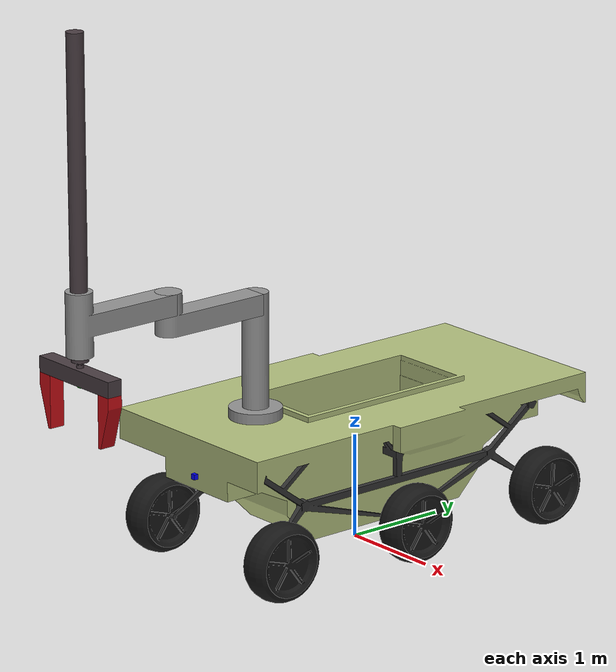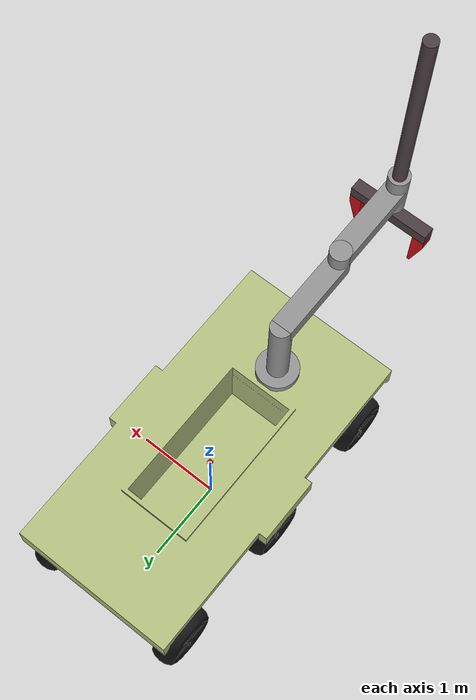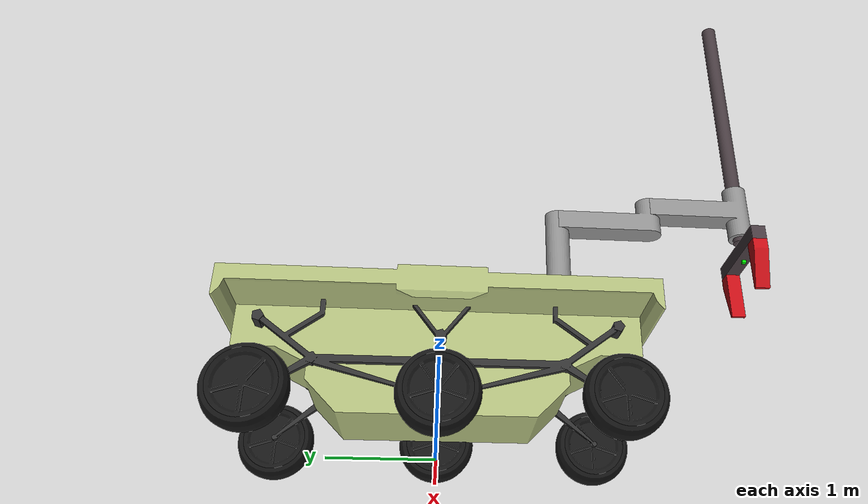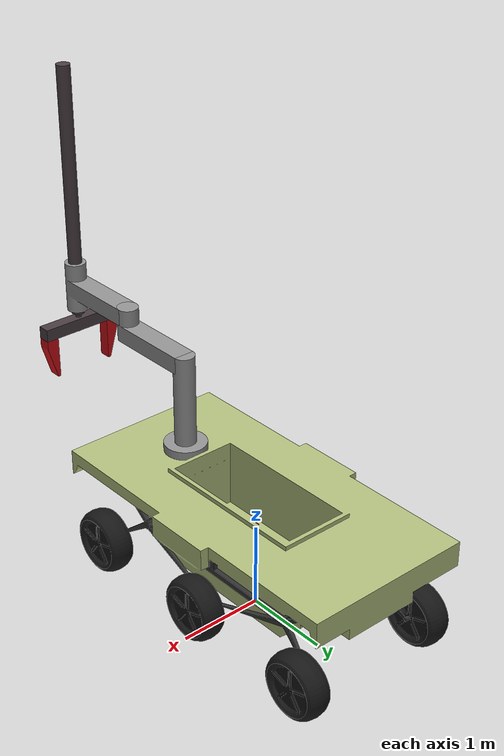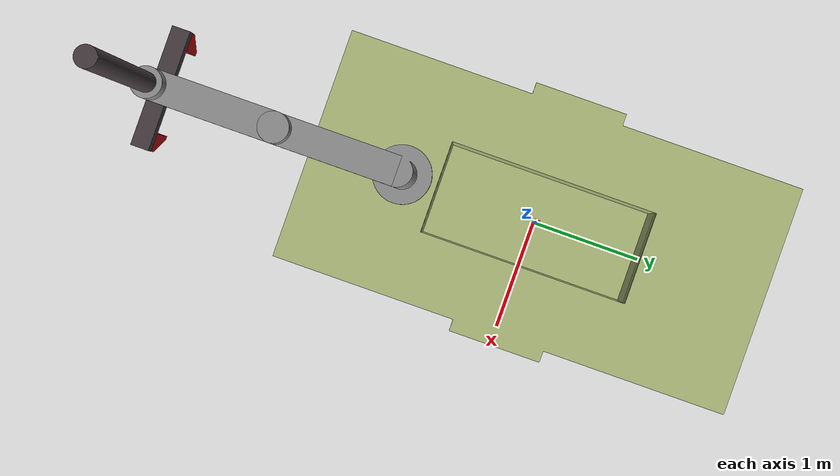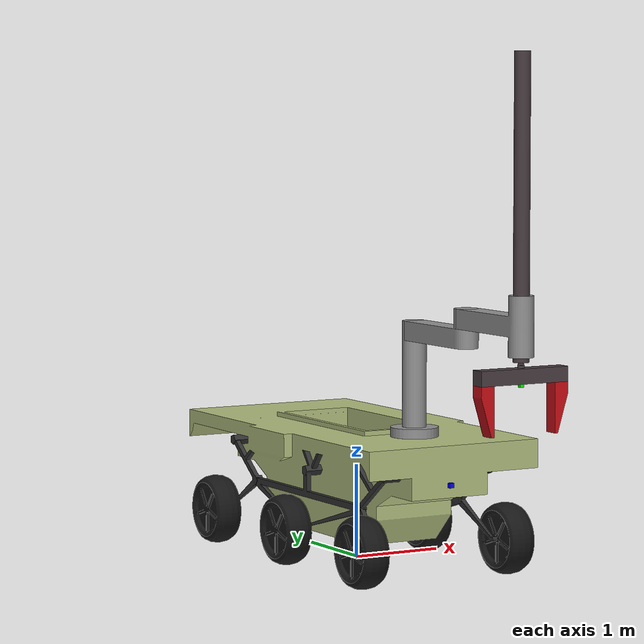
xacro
<?xml version="1.0" encoding="UTF-8"?>
<robot name="rover_jorge_martin" xmlns:xacro="http://wiki.ros.org/xacro">

  <xacro:include filename="$(find rover_jorge_martin_description)/urdf/base/robot_base.urdf.xacro"/>
  <xacro:include filename="$(find rover_jorge_martin_description)/urdf/scara/robot_scara.urdf.xacro"/>
  <xacro:include filename="$(find rover_jorge_martin_description)/urdf/ruedas/robot_ruedas.urdf.xacro"/>

  <link name="base_footprint"/>
  <link name="base_link"/>

  <joint name="base_footprint_to_base_link" type="fixed">
    <parent link="base_footprint"/>
    <child link="base_link"/>
    <origin rpy="0 0 0" xyz="0 0 1.025"/>
  </joint>

  <joint name="base_link_to_root" type="fixed">
    <parent link="base_link"/>
    <child link="rover_Root"/>
    <origin rpy="0 0 0" xyz="0 0 0"/>
  </joint>

  <xacro:rover_base prefix="rover_"
                    chasis_mass="100.0"
                    imu_topic="/rover/imu/data"
                    camera_topic="/rover/front_camera/image_raw"
                    camera_width="640"
                    camera_height="480"
                    camera_fov="1.39626"/>

  <xacro:robot_scara prefix="rover_"
                     ee_camera_topic="/rover/ee_camera/image_raw"
                     ee_camera_width="640"
                     ee_camera_height="480"
                     ee_camera_fov="1.39626"/>

  <xacro:robot_ruedas prefix="rover_"/>

  <xacro:include filename="$(find rover_jorge_martin_description)/urdf/ros2_control.urdf.xacro"/>
  <xacro:ros2_control config_controllers="$(find rover_jorge_martin_description)/config/rover_controllers.yaml"/>

</robot>

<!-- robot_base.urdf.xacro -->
<robot xmlns:xacro="http://wiki.ros.org/xacro">

  <xacro:macro name="rover_base"
               params="prefix
                       chasis_mass:=75.0
                       chasis_ixx:=0.002
                       chasis_iyy:=0.002
                       chasis_izz:=0.002
                       imu_topic:=/imu
                       camera_topic:=/camera/image
                       camera_width:=640
                       camera_height:=480
                       camera_fov:=1.39626">

    <link name="${prefix}Root"/>

    <link name="${prefix}Chasis_visual">
      <collision name="${prefix}Chasis_collision_1">
        <origin rpy="0 0 0" xyz="0 -1.44233 -0.12967"/>
        <geometry>
          <box size="2.20000 1.08467 1.20000"/>
        </geometry>
      </collision>
      <collision name="${prefix}Chasis_collision_2">
        <origin rpy="0 0 0" xyz="0 1.45830 -0.12967"/>
        <geometry>
          <box size="2.20000 1.11661 1.20000"/>
        </geometry>
      </collision>
      <collision name="${prefix}Chasis_collision_3">
        <origin rpy="0 0 0" xyz="0.80174 0 -0.12967"/>
        <geometry>
          <box size="0.80348 4.00000 1.20000"/>
        </geometry>
      </collision>
      <collision name="${prefix}Chasis_collision_4">
        <origin rpy="0 0 0" xyz="-0.73049 0 -0.12967"/>
        <geometry>
          <box size="0.71767 4.00000 1.20000"/>
        </geometry>
      </collision>
      <collision name="${prefix}Chasis_collision_5">
        <origin rpy="0 0 0" xyz="0 0 -0.52825"/>
        <geometry>
          <box size="2.20000 4.00000 0.42160"/>
        </geometry>
      </collision>

      <inertial>
        <inertia ixx="${chasis_ixx}" ixy="0" ixz="0" iyy="${chasis_iyy}" iyz="0" izz="${chasis_izz}"/>
        <origin rpy="0 0 0" xyz="0 0 0"/>
        <mass value="${chasis_mass}"/>
      </inertial>

      <visual name="${prefix}Chasis_visual_mesh">
        <material name="${prefix}Chasis_material"/>
        <origin rpy="0 0 0" xyz="0 0 0"/>
        <geometry>
          <mesh filename="file:///home/longas/.gz/sim/models/rover_jorge_martin_description/meshes/dae/Cube.017.dae" scale="1 1 1"/>
        </geometry>
      </visual>
    </link>

    <link name="${prefix}Suspension_I_visual">
      <visual name="${prefix}Suspension_I_visual_mesh">
        <material name="${prefix}Suspension_material"/>
        <origin rpy="0 0 0" xyz="0 0 0"/>
        <geometry>
          <mesh filename="file:///home/longas/.gz/sim/models/rover_jorge_martin_description/meshes/dae/Cylinder.007.dae" scale="1 1 1"/>
        </geometry>
      </visual>
    </link>

    <link name="${prefix}Suspension_D_visual">
      <visual name="${prefix}Suspension_D_visual_mesh">
        <material name="${prefix}Suspension_material"/>
        <origin rpy="0 0 0" xyz="0 0 0"/>
        <geometry>
          <mesh filename="file:///home/longas/.gz/sim/models/rover_jorge_martin_description/meshes/dae/Cylinder.013.dae" scale="1 1 1"/>
        </geometry>
      </visual>
    </link>

    <link name="${prefix}Chasis_link"/>
    <link name="${prefix}Suspension_I_link"/>
    <link name="${prefix}Suspension_D_link"/>

    <link name="${prefix}imu_link">
      <visual name="${prefix}imu_visual">
        <material name="${prefix}imu_material"/>
        <origin rpy="0 0 0" xyz="0 0 0"/>
        <geometry>
          <box size="0.05 0.05 0.05"/>
        </geometry>
      </visual>
    </link>

    <link name="${prefix}front_camera_frame">
      <visual name="${prefix}front_camera_visual">
        <material name="${prefix}camera_material"/>
        <origin rpy="0 0 0" xyz="0 0 0"/>
        <geometry>
          <box size="0.08 0.05 0.05"/>
        </geometry>
      </visual>
    </link>

    <joint name="${prefix}Chasis_visual_joint" type="fixed">
      <parent link="${prefix}Root"/>
      <child link="${prefix}Chasis_visual"/>
      <origin rpy="0 0 0" xyz="0 0 0"/>
    </joint>

    <joint name="${prefix}Suspension_I_visual_joint" type="fixed">
      <parent link="${prefix}Root"/>
      <child link="${prefix}Suspension_I_visual"/>
      <origin rpy="0 0 0" xyz="0.58736 -0.18962 -0.20712"/>
    </joint>

    <joint name="${prefix}Suspension_D_visual_joint" type="fixed">
      <parent link="${prefix}Root"/>
      <child link="${prefix}Suspension_D_visual"/>
      <origin rpy="0 0 0" xyz="-0.58736 0.18962 -0.20712"/>
    </joint>

    <joint name="${prefix}Chasis_joint" type="fixed">
      <parent link="${prefix}Root"/>
      <child link="${prefix}Chasis_link"/>
      <origin rpy="0 0 -1.5708" xyz="0 0 0"/>
    </joint>

    <joint name="${prefix}Suspension_I_joint" type="fixed">
      <parent link="${prefix}Root"/>
      <child link="${prefix}Suspension_I_link"/>
      <origin rpy="0 0 -1.5708" xyz="0.58736 -0.18962 -0.20712"/>
    </joint>

    <joint name="${prefix}Suspension_D_joint" type="fixed">
      <parent link="${prefix}Root"/>
      <child link="${prefix}Suspension_D_link"/>
      <origin rpy="0 0 -1.5708" xyz="-0.58736 0.18962 -0.20712"/>
    </joint>

    <joint name="${prefix}imu_joint" type="fixed">
      <parent link="${prefix}Chasis_link"/>
      <child link="${prefix}imu_link"/>
      <origin rpy="0 0 0" xyz="0 0 0"/>
    </joint>

    <joint name="${prefix}front_camera_joint" type="fixed">
      <parent link="${prefix}Chasis_link"/>
      <child link="${prefix}front_camera_frame"/>
      <origin rpy="0 0 0" xyz="1.9 0 0"/>
    </joint>

    <gazebo reference="${prefix}imu_link">
      <sensor name="${prefix}imu_sensor" type="imu">
        <always_on>1</always_on>
        <update_rate>30</update_rate>
        <topic>${imu_topic}</topic>
        <visualize>true</visualize>
      </sensor>
    </gazebo>

    <gazebo reference="${prefix}front_camera_frame">
      <sensor name="${prefix}front_camera" type="camera">
        <visualize>true</visualize>
        <update_rate>30</update_rate>
        <topic>${camera_topic}</topic>
        <camera>
          <horizontal_fov>${camera_fov}</horizontal_fov>
          <image>
            <width>${camera_width}</width>
            <height>${camera_height}</height>
            <format>R8G8B8</format>
          </image>
          <clip>
            <near>0.10</near>
            <far>15.0</far>
          </clip>
          <noise>
            <type>gaussian</type>
            <mean>0.0</mean>
            <stddev>0.007</stddev>
          </noise>
          <optical_frame_id>${prefix}front_camera_frame</optical_frame_id>
        </camera>
      </sensor>
    </gazebo>

    <material name="${prefix}Chasis_material">
      <color rgba="0.69804 0.74902 0.49412 1.0"/>
    </material>

    <material name="${prefix}Suspension_material">
      <color rgba="0.19608 0.19608 0.19608 1.0"/>
    </material>

    <material name="${prefix}imu_material">
      <color rgba="1.0 0.0 0.0 1.0"/>
    </material>

    <material name="${prefix}camera_material">
      <color rgba="0.0 0.0 1.0 1.0"/>
    </material>

  </xacro:macro>

</robot>

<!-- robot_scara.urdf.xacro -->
<robot xmlns:xacro="http://wiki.ros.org/xacro">

  <xacro:include filename="$(find rover_jorge_martin_description)/urdf/scara/brazo_scara.urdf.xacro"/>
  <xacro:include filename="$(find rover_jorge_martin_description)/urdf/scara/mano_scara.urdf.xacro"/>

  <xacro:macro name="robot_scara"
               params="prefix
                       brazo1_mass:=5.0
                       brazo2_mass:=5.0
                       brazo3_mass:=6.0
                       brazo4_mass:=6.0
                       muneca_mass:=2.0
                       dedo_mass:=0.5
                       ee_camera_topic:=/ee_camera/image
                       ee_camera_width:=640
                       ee_camera_height:=480
                       ee_camera_fov:=1.39626">

    <xacro:brazo_scara prefix="${prefix}"
                       brazo1_mass="${brazo1_mass}"
                       brazo2_mass="${brazo2_mass}"
                       brazo3_mass="${brazo3_mass}"
                       brazo4_mass="${brazo4_mass}"/>

    <xacro:mano_scara prefix="${prefix}"
                      muneca_mass="${muneca_mass}"
                      dedo_mass="${dedo_mass}"
                      ee_camera_topic="${ee_camera_topic}"
                      ee_camera_width="${ee_camera_width}"
                      ee_camera_height="${ee_camera_height}"
                      ee_camera_fov="${ee_camera_fov}"/>

  </xacro:macro>

</robot>

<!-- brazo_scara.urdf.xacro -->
<robot xmlns:xacro="http://wiki.ros.org/xacro">

  <xacro:macro name="brazo_scara"
               params="prefix
                       brazo1_mass:=5.0
                       brazo2_mass:=5.0
                       brazo3_mass:=6.0
                       brazo4_mass:=6.0">

    <link name="${prefix}Brazo1_visual">
      <collision name="${prefix}Brazo1_collision">
        <origin rpy="0 0 0" xyz="0 0 0.60000"/>
        <geometry><cylinder radius="0.25000" length="1.20000"/></geometry>
      </collision>
      <inertial>
        <inertia ixx="0.66448" ixy="0" ixz="0" iyy="0.66448" iyz="0" izz="0.07703"/>
        <origin rpy="0 0 0" xyz="0 0 0.49000"/>
        <mass value="${brazo1_mass}"/>
      </inertial>
      <visual name="${prefix}Brazo1_visual_mesh">
        <material name="${prefix}Brazo1_material"/>
        <origin rpy="0 0 0" xyz="0 0 0.65000"/>
        <geometry>
          <mesh filename="file:///home/longas/.gz/sim/models/rover_jorge_martin_description/meshes/dae/Circle.001.dae" scale="0.125 0.125 0.12602"/>
        </geometry>
      </visual>
    </link>

    <link name="${prefix}Brazo2_visual">
      <collision name="${prefix}Brazo2_collision">
        <origin rpy="0 0 0" xyz="0 -0.56010 0.07193"/>
        <geometry><box size="0.25000 1.12500 0.40000"/></geometry>
      </collision>
      <inertial>
        <inertia ixx="1.07924" ixy="0" ixz="0" iyy="0.08347" iyz="0.14296" izz="1.04413"/>
        <origin rpy="0 0 0" xyz="0 -0.64033 0"/>
        <mass value="${brazo2_mass}"/>
      </inertial>
      <visual name="${prefix}Brazo2_visual_mesh">
        <material name="${prefix}Brazo2_material"/>
        <origin rpy="0 0 0" xyz="0 -0.64033 0"/>
        <geometry>
          <mesh filename="file:///home/longas/.gz/sim/models/rover_jorge_martin_description/meshes/dae/Cube.012.dae" scale="0.125 0.500 0.100"/>
        </geometry>
      </visual>
    </link>

    <link name="${prefix}Brazo3_visual">
      <collision name="${prefix}Brazo3_collision">
        <origin rpy="0 0 0" xyz="0 -0.56250 0"/>
        <geometry><box size="0.25000 1.12500 0.60000"/></geometry>
      </collision>
      <inertial>
        <inertia ixx="1.15753" ixy="0" ixz="0" iyy="0.10738" iyz="0" izz="1.10677"/>
        <origin rpy="0 0 0" xyz="0 -0.68460 0"/>
        <mass value="${brazo3_mass}"/>
      </inertial>
      <visual name="${prefix}Brazo3_visual_mesh">
        <material name="${prefix}Brazo3_material"/>
        <origin rpy="0 0 0" xyz="0 -0.68460 0"/>
        <geometry>
          <mesh filename="file:///home/longas/.gz/sim/models/rover_jorge_martin_description/meshes/dae/Circle.004.dae" scale="0.125 0.125 3.0"/>
        </geometry>
      </visual>
    </link>

    <link name="${prefix}Brazo4_visual">
      <collision name="${prefix}Brazo4_collision">
        <origin rpy="0 0 0" xyz="0 0 0"/>
        <geometry><cylinder radius="0.08000" length="3.00000"/></geometry>
      </collision>
      <inertial>
        <inertia ixx="4.50954" ixy="0" ixz="0" iyy="4.50954" iyz="0" izz="0.01908"/>
        <origin rpy="0 0 0" xyz="0 0 0.00232"/>
        <mass value="${brazo4_mass}"/>
      </inertial>
      <visual name="${prefix}Brazo4_visual_mesh">
        <material name="${prefix}Brazo4_material"/>
        <origin rpy="0 0 0" xyz="0 0 0.00232"/>
        <geometry>
          <mesh filename="file:///home/longas/.gz/sim/models/rover_jorge_martin_description/meshes/dae/Circle.010.dae" scale="0.080 0.080 15.00001"/>
        </geometry>
      </visual>
    </link>

    <link name="${prefix}Brazo1_link"/>
    <link name="${prefix}Brazo2_link"/>
    <link name="${prefix}Brazo3_link"/>
    <link name="${prefix}Brazo4_link"/>

    <joint name="${prefix}Brazo1_visual_joint" type="fixed">
      <parent link="${prefix}Brazo1_link"/>
      <child link="${prefix}Brazo1_visual"/>
      <origin rpy="0 0 0" xyz="0 0 0"/>
    </joint>

    <joint name="${prefix}Brazo2_visual_joint" type="fixed">
      <parent link="${prefix}Brazo2_link"/>
      <child link="${prefix}Brazo2_visual"/>
      <origin rpy="0 0 1.5707" xyz="0 0 0"/>
    </joint>

    <joint name="${prefix}Brazo3_visual_joint" type="fixed">
      <parent link="${prefix}Brazo3_link"/>
      <child link="${prefix}Brazo3_visual"/>
      <origin rpy="0 0 1.5707" xyz="0 0 0"/>
    </joint>

    <joint name="${prefix}Brazo4_visual_joint" type="fixed">
      <parent link="${prefix}Brazo4_link"/>
      <child link="${prefix}Brazo4_visual"/>
      <origin rpy="0 0 1.5707" xyz="0 0 0"/>
    </joint>

    <joint name="${prefix}Brazo1_link_joint" type="fixed">
      <parent link="${prefix}Root"/>
      <child link="${prefix}Brazo1_link"/>
      <origin rpy="0 0 -1.5708" xyz="0 -1.20000 0.42033"/>
    </joint>

    <joint name="${prefix}Brazo2_link_joint" type="revolute">
      <limit lower="-3.15000" upper="3.15000" effort="200.0" velocity="1.0"/>
      <origin rpy="0 0 0" xyz="0 0 1.12807"/>
      <parent link="${prefix}Brazo1_link"/>
      <child link="${prefix}Brazo2_link"/>
      <axis xyz="0 0 1"/>
    </joint>

    <joint name="${prefix}Brazo3_link_joint" type="revolute">
      <limit lower="-3.15000" upper="3.15000" effort="200.0" velocity="1.0"/>
      <origin rpy="0 0 0" xyz="1.00000 0 0.17193"/>
      <parent link="${prefix}Brazo2_link"/>
      <child link="${prefix}Brazo3_link"/>
      <axis xyz="0 0 1"/>
    </joint>

    <joint name="${prefix}Brazo4_link_joint" type="prismatic">
      <limit lower="-3.15000" upper="0" effort="200.0" velocity="1.0"/>
      <origin rpy="0 0 0" xyz="1.00000 0 1.14982"/>
      <parent link="${prefix}Brazo3_link"/>
      <child link="${prefix}Brazo4_link"/>
      <axis xyz="0 0 1"/>
    </joint>

    <material name="${prefix}Brazo1_material">
      <color rgba="0.57647 0.57647 0.57647 1.0"/>
    </material>
    <material name="${prefix}Brazo2_material">
      <color rgba="0.57647 0.57647 0.57647 1.0"/>
    </material>
    <material name="${prefix}Brazo3_material">
      <color rgba="0.57647 0.57647 0.57647 1.0"/>
    </material>
    <material name="${prefix}Brazo4_material">
      <color rgba="0.28627 0.23922 0.25882 1.0"/>
    </material>

  </xacro:macro>

</robot>

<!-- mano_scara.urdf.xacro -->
<robot xmlns:xacro="http://wiki.ros.org/xacro">

  <xacro:macro name="mano_scara"
               params="prefix
                       muneca_mass:=2.0
                       dedo_mass:=0.5
                       ee_camera_topic:=/ee_camera/image
                       ee_camera_width:=640
                       ee_camera_height:=480
                       ee_camera_fov:=1.39626">

    <link name="${prefix}Muneca_visual">
      <collision name="${prefix}Muneca_collision">
        <origin rpy="0 0 0" xyz="0 0 0.11224"/>
        <geometry>
          <box size="1.00000 0.15000 0.20283"/>
        </geometry>
      </collision>
      <inertial>
        <inertia ixx="0.06071" ixy="0" ixz="0" iyy="0.21649" iyz="0" izz="0.16296"/>
        <origin rpy="0 0 0" xyz="0 0 0"/>
        <mass value="${muneca_mass}"/>
      </inertial>
      <visual name="${prefix}Muneca_visual_mesh">
        <material name="${prefix}Muneca_material"/>
        <origin rpy="0 0 0" xyz="0 0 0.08292"/>
        <geometry>
          <mesh filename="file:///home/longas/.gz/sim/models/rover_jorge_martin_description/meshes/dae/Circle.013.dae" scale="0.035 0.035 0.15027"/>
        </geometry>
      </visual>
    </link>

    <link name="${prefix}Dedo_drch_visual">
      <collision name="${prefix}Dedo_drch_collision">
        <origin rpy="0 0 0" xyz="0 0 0.13332"/>
        <geometry>
          <box size="0.15000 0.15000 0.50000"/>
        </geometry>
        <surface>
          <friction>
            <ode>
              <mu>100</mu>
              <mu2>100</mu2>
              <slip1>0.0</slip1>
              <slip2>0.0</slip2>
            </ode>
          </friction>
        </surface>
      </collision>
      <inertial>
        <inertia ixx="0.00985" ixy="0" ixz="-0.00099" iyy="0.00971" iyz="0" izz="0.00174"/>
        <origin rpy="0 0 0" xyz="-0.83436 0 0.05214"/>
        <mass value="${dedo_mass}"/>
      </inertial>
      <visual name="${prefix}Dedo_drch_visual_mesh">
        <material name="${prefix}Dedo_material"/>
        <origin rpy="0 0 0" xyz="0 0 0.13332"/>
        <geometry>
          <mesh filename="file:///home/longas/.gz/sim/models/rover_jorge_martin_description/meshes/dae/Cube.014.dae" scale="0.075 0.075 0.250"/>
        </geometry>
      </visual>
    </link>

    <link name="${prefix}Dedo_izq_visual">
      <collision name="${prefix}Dedo_izq_collision">
        <origin rpy="0 0 0" xyz="0 0 0.13332"/>
        <geometry>
          <box size="0.15000 0.15000 0.50000"/>
        </geometry>
        <surface>
          <friction>
            <ode>
              <mu>100</mu>
              <mu2>100</mu2>
              <slip1>0.0</slip1>
              <slip2>0.0</slip2>
            </ode>
          </friction>
        </surface>
      </collision>
      <inertial>
        <inertia ixx="0.00985" ixy="0" ixz="0.00099" iyy="0.00971" iyz="0" izz="0.00174"/>
        <origin rpy="0 0 0" xyz="-0.83436 0 0.05214"/>
        <mass value="${dedo_mass}"/>
      </inertial>
      <visual name="${prefix}Dedo_izq_visual_mesh">
        <material name="${prefix}Dedo_material"/>
        <origin rpy="0 0 0" xyz="0 0 0.13332"/>
        <geometry>
          <mesh filename="file:///home/longas/.gz/sim/models/rover_jorge_martin_description/meshes/dae/Cube.016.dae" scale="0.075 0.075 0.250"/>
        </geometry>
      </visual>
    </link>

    <link name="${prefix}Muneca_link"/>
    <link name="${prefix}Dedo_drch_link"/>
    <link name="${prefix}Dedo_izq_link"/>

    <link name="${prefix}ee_camera_frame">
      <visual name="${prefix}ee_camera_visual">
        <material name="${prefix}ee_camera_material"/>
        <origin rpy="0 0 0" xyz="0 0 0"/>
        <geometry>
          <box size="0.06 0.04 0.04"/>
        </geometry>
      </visual>
    </link>

    <joint name="${prefix}Muneca_visual_joint" type="fixed">
      <parent link="${prefix}Muneca_link"/>
      <child link="${prefix}Muneca_visual"/>
      <origin rpy="0 0 1.5707" xyz="0 0 0"/>
    </joint>

    <joint name="${prefix}Dedo_drch_visual_joint" type="fixed">
      <parent link="${prefix}Dedo_drch_link"/>
      <child link="${prefix}Dedo_drch_visual"/>
      <origin rpy="0 0 1.5707" xyz="0 0 0"/>
    </joint>

    <joint name="${prefix}Dedo_izq_visual_joint" type="fixed">
      <parent link="${prefix}Dedo_izq_link"/>
      <child link="${prefix}Dedo_izq_visual"/>
      <origin rpy="0 0 -1.5707" xyz="0 0 0"/>
    </joint>

    <joint name="${prefix}ee_camera_joint" type="fixed">
      <parent link="${prefix}Muneca_link"/>
      <child link="${prefix}ee_camera_frame"/>
      <origin rpy="0 1.57 0" xyz="0 0 0"/>
    </joint>

    <joint name="${prefix}Muneca_link_joint" type="continuous">
      <limit effort="200.0" velocity="1"/>
      <origin rpy="0 0 0" xyz="0 0 -1.71134"/>
      <parent link="${prefix}Brazo4_link"/>
      <child link="${prefix}Muneca_link"/>
      <axis xyz="0 0 1"/>
    </joint>

    <joint name="${prefix}Dedo_drch_link_joint" type="prismatic">
      <limit lower="0" upper="0.30000" effort="500.0" velocity="1.0"/>
      <origin rpy="0 0 0" xyz="0 -0.42500 -0.37634"/>
      <parent link="${prefix}Muneca_link"/>
      <child link="${prefix}Dedo_drch_link"/>
      <axis xyz="0 1 0"/>
    </joint>

    <joint name="${prefix}Dedo_izq_link_joint" type="prismatic">
      <limit lower="-0.30000" upper="0" effort="500.0" velocity="1.0"/>
      <origin rpy="0 0 0" xyz="0 0.42500 -0.37634"/>
      <parent link="${prefix}Muneca_link"/>
      <child link="${prefix}Dedo_izq_link"/>
      <axis xyz="0 1 0"/>
    </joint>

    <gazebo reference="${prefix}ee_camera_frame">
      <sensor name="${prefix}ee_camera" type="camera">
        <visualize>true</visualize>
        <update_rate>30</update_rate>
        <topic>${ee_camera_topic}</topic>
        <camera>
          <horizontal_fov>${ee_camera_fov}</horizontal_fov>
          <image>
            <width>${ee_camera_width}</width>
            <height>${ee_camera_height}</height>
            <format>R8G8B8</format>
          </image>
          <clip>
            <near>0.10</near>
            <far>15.0</far>
          </clip>
          <noise>
            <type>gaussian</type>
            <mean>0.0</mean>
            <stddev>0.007</stddev>
          </noise>
          <optical_frame_id>${prefix}ee_camera_frame</optical_frame_id>
        </camera>
      </sensor>
    </gazebo>

    <material name="${prefix}Muneca_material">
      <color rgba="0.28627 0.23922 0.25882 1.0"/>
    </material>
    <material name="${prefix}Dedo_material">
      <color rgba="0.79608 0.05882 0.08627 1.0"/>
    </material>
    <material name="${prefix}ee_camera_material">
      <color rgba="0.0 1.0 0.0 1.0"/>
    </material>

  </xacro:macro>

</robot>

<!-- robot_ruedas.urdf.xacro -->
<robot xmlns:xacro="http://wiki.ros.org/xacro">

  <xacro:include filename="$(find rover_jorge_martin_description)/urdf/ruedas/rueda.urdf.xacro"/>

  <xacro:macro name="robot_ruedas" params="prefix">

    <xacro:rueda name="${prefix}Rueda_1_I"
                 parent_link="${prefix}Suspension_I_link"
                 xyz="-1.80612 0.27836 -0.44898"
                 rpy="-1.5708 0 0"/>

    <xacro:rueda name="${prefix}Rueda_2_I"
                 parent_link="${prefix}Suspension_I_link"
                 xyz="-0.18962 0.27836 -0.44898"
                 rpy="-1.5708 0 0"/>

    <xacro:rueda name="${prefix}Rueda_3_I"
                 parent_link="${prefix}Suspension_I_link"
                 xyz="1.42228 0.27836 -0.44898"
                 rpy="-1.5708 0 0"/>

    <xacro:rueda name="${prefix}Rueda_1_D"
                 parent_link="${prefix}Suspension_D_link"
                 xyz="1.80152 -0.27836 -0.44898"
                 rpy="-1.5708 0 0"/>

    <xacro:rueda name="${prefix}Rueda_2_D"
                 parent_link="${prefix}Suspension_D_link"
                 xyz="0.18962 -0.27836 -0.44898"
                 rpy="-1.5708 0 0"/>

    <xacro:rueda name="${prefix}Rueda_3_D"
                 parent_link="${prefix}Suspension_D_link"
                 xyz="-1.42228 -0.27836 -0.44898"
                 rpy="-1.5708 0 0"/>

  </xacro:macro>

</robot>

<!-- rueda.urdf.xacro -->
<robot xmlns:xacro="http://wiki.ros.org/xacro">

  <xacro:macro name="rueda"
               params="name
                       parent_link
                       xyz
                       rpy
                       wheel_radius:=0.375
                       wheel_length:=0.300
                       wheel_mass:=5.0">

    <link name="${name}_visual">
      <collision name="${name}_collision_visual">
        <origin rpy="0 0 0" xyz="0.00003 0.00018 -0.00054"/>
        <geometry><cylinder radius="${wheel_radius}" length="${wheel_length}"/></geometry>
      </collision>
      <inertial>
        <inertia ixx="0.01" ixy="0" ixz="0" iyy="0.01" iyz="0" izz="0.01"/>
        <origin rpy="0 0 0" xyz="0 0 0"/>
        <mass value="${wheel_mass}"/>
      </inertial>
      <visual name="${name}_visual_mesh">
        <material name="${name}_material"/>
        <origin rpy="0 -1.5708 0" xyz="0 0 0"/>
        <geometry>
          <mesh filename="file:///home/longas/.gz/sim/models/rover_jorge_martin_description/meshes/dae/Circle.008.dae" scale="1 1 1"/>
        </geometry>
      </visual>
    </link>

    <link name="${name}_link">
      <collision name="${name}_collision">
        <origin rpy="0 0 0" xyz="0 0 0"/>
        <geometry>
          <cylinder radius="${wheel_radius}" length="${wheel_length}"/>
        </geometry>
        <surface>
          <friction>
            <ode>
              <mu>0.5</mu>
              <mu2>0.5</mu2>
              <fdir1>0 0 1</fdir1>
              <slip1>0.5</slip1>
              <slip2>0.5</slip2>
            </ode>
          </friction>
        </surface>
      </collision>
      <inertial>
        <inertia ixx="0.01" ixy="0" ixz="0" iyy="0.01" iyz="0" izz="0.01"/>
        <origin rpy="0 0 0" xyz="0 0 0"/>
        <mass value="${wheel_mass}"/>
      </inertial>
    </link>

    <joint name="${name}_joint" type="continuous">
      <limit effort="500" velocity="20"/>
      <origin rpy="${rpy}" xyz="${xyz}"/>
      <parent link="${parent_link}"/>
      <child link="${name}_link"/>
      <axis xyz="0 0 1"/>
      <dynamics damping="0.5"/>
    </joint>

    <joint name="${name}_visual_joint" type="fixed">
      <parent link="${name}_link"/>
      <child link="${name}_visual"/>
      <origin rpy="0 0 0" xyz="0 0 0"/>
    </joint>

    <transmission name="${name}_transmission">
      <type>transmission_interface/SimpleTransmission</type>
      <joint name="${name}_joint">
        <hardwareInterface>hardwareInterface/VelocityJointInterface</hardwareInterface>
      </joint>
      <actuator name="${name}_actuator">
        <mechanicalReduction>1</mechanicalReduction>
      </actuator>
    </transmission>

    <gazebo reference="${name}_joint">
      <mu1>5</mu1>
      <mu2>5</mu2>
    </gazebo>

    <material name="${name}_material">
      <color rgba="0.0902 0.0902 0.0902 1.0"/>
    </material>

  </xacro:macro>

</robot>
